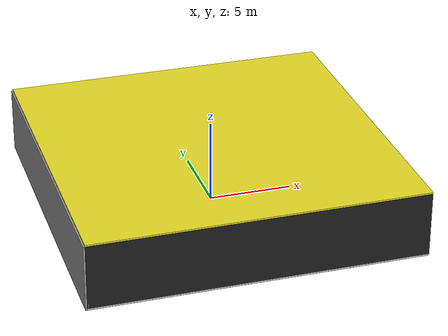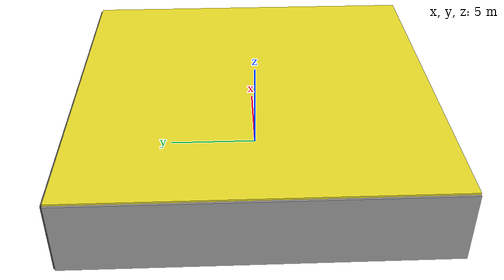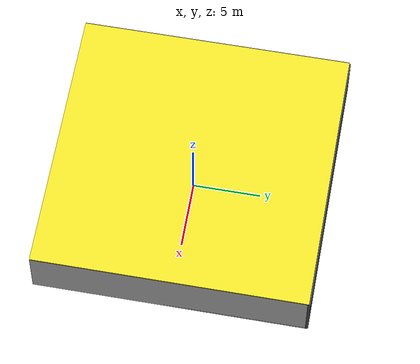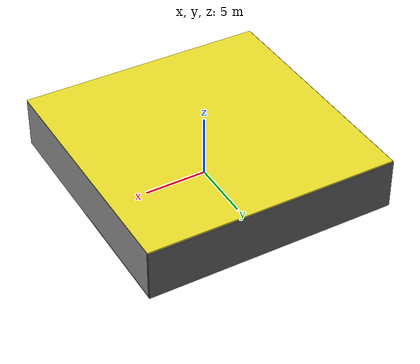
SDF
<sdf version="1.4">
 <world name="default">
  <physics type="ode">
   <max_step_size>0.001</max_step_size>
   <real_time_factor>1</real_time_factor>
   <real_time_update_rate>1000</real_time_update_rate>
   <gravity>0 0 -9.8</gravity>
  </physics>
  <scene><ambient>0.4 0.4 0.4 1</ambient><background>0.7 0.7 0.7 1</background><shadows>1</shadows></scene>
  <model name="Surrounding">
   <static>1</static>
   <link name="Ceiling">
    <collision name="Ceiling_Collision"><geometry><box><size>20 20 0.1</size></box></geometry></collision>
    <visual name="Ceiling_Visual">
     <geometry><box><size>20 20 0.1</size></box></geometry>
     <material>
      <script><uri>file://media/materials/scripts/gazebo.material</uri><name>Gazebo/Yellow</name></script>
     </material>
    </visual>
    <pose>0 0 4.05 0 0 0</pose>
   </link>
   <link name="Wall_South">
    <collision name="Wall_South_Collision">
     <geometry><box><size>20 0 4</size></box></geometry>
     <pose>0 0 2 0 -0 0</pose>
    </collision>
    <visual name="Wall_South_Visual">
     <pose>0 0 2 0 -0 0</pose>
     <geometry><box><size>20 0 4</size></box></geometry>
     <material>
      <script><uri>file://media/materials/scripts/gazebo.material</uri><name>Gazebo/FlatBlack</name></script>
     </material>
    </visual>
    <velocity_decay><linear>0</linear><angular>0</angular></velocity_decay>
    <pose>0 -10 0 0 -0 0</pose>
   </link>
   <link name="Wall_East">
    <collision name="Wall_21_Collision">
     <geometry><box><size>20 0 4</size></box></geometry>
     <pose>0 0 2 0 -0 0</pose>
    </collision>
    <visual name="Wall_21_Visual">
     <pose>0 0 2 0 -0 0</pose>
     <geometry><box><size>20 0 4</size></box></geometry>
     <material>
      <script><uri>file://media/materials/scripts/gazebo.material</uri><name>Gazebo/PioneerBody</name></script>
     </material>
    </visual>
    <velocity_decay><linear>0</linear><angular>0</angular></velocity_decay>
    <pose>10 0 0 0 -0 1.5708</pose>
   </link>
   <link name="Wall_North">
    <collision name="Wall_22_Collision">
     <geometry><box><size>20 0.2 4</size></box></geometry>
     <pose>0 0 2 0 -0 0</pose>
    </collision>
    <visual name="Wall_22_Visual">
     <pose>0 0 2 0 -0 0</pose>
     <geometry><box><size>20 0.2 4</size></box></geometry>
     <material>
      <script><uri>file://media/materials/scripts/gazebo.material</uri><name>Gazebo/Road</name></script>
     </material>
    </visual>
    <velocity_decay><linear>0</linear><angular>0</angular></velocity_decay>
    <pose>0 10 0 0 -0 0</pose>
   </link>
   <link name="Wall_West">
    <collision name="Wall_23_Collision">
     <geometry><box><size>20 0.2 4</size></box></geometry>
     <pose>0 0 2 0 -0 0</pose>
    </collision>
    <visual name="Wall_23_Visual">
     <pose>0 0 2 0 -0 0</pose>
     <geometry><box><size>20 0.2 4</size></box></geometry>
     <material>
      <script><uri>file://media/materials/scripts/gazebo.material</uri><name>Gazebo/Grey</name></script>
     </material>
    </visual>
    <velocity_decay><linear>0</linear><angular>0</angular></velocity_decay>
    <pose>-10 0 0 0 0 -1.5708</pose>
   </link>
   <link name="Ground_link">
    <collision name="collision">
     <pose>0 0 .05 0 -0 0</pose>
     <geometry><box><size>20 20 0.1</size></box></geometry>
    </collision>
    <visual name="visual">
     <pose>0 0 .05 0 -0 0</pose>
     <geometry><box><size>20 20 0.1</size></box></geometry>
     <material>
      <script><uri>file://media/materials/scripts/gazebo.material</uri><name>Gazebo/CeilingTiled</name></script>
     </material>
    </visual>
   </link>
   <static>1</static>
  </model>
  <spherical_coordinates>
   <surface_model>EARTH_WGS84</surface_model>
   <latitude_deg>0</latitude_deg>
   <longitude_deg>0</longitude_deg>
   <elevation>0</elevation>
   <heading_deg>0</heading_deg>
  </spherical_coordinates>
  <light name="lightball_0" type="diffuse">
   <diffuse>0.8 0.8 0.8 1</diffuse>
   <specular>0.2 0.2 0.2 1</specular>
   <attenuation>
    <range>100</range>
    <constant>0.7</constant>
    <linear>0.01</linear>
    <quadratic>0.001</quadratic>
   </attenuation>
   <direction>-0.5 0.1 -0.9</direction>
   <pose>4.96685758433 2.22049334745 2.43187682235 0 0 0</pose>
  </light>
  <light name="lightball_1" type="diffuse">
   <diffuse>0.8 0.8 0.8 1</diffuse>
   <specular>0.2 0.2 0.2 1</specular>
   <attenuation>
    <range>100</range>
    <constant>0.7</constant>
    <linear>0.01</linear>
    <quadratic>0.001</quadratic>
   </attenuation>
   <direction>-0.5 0.1 -0.9</direction>
   <pose>-5.4610782133 -2.73628196429 2.2216930667 0 0 0</pose>
  </light>
  <light name="lightball_2" type="diffuse">
   <diffuse>0.8 0.8 0.8 1</diffuse>
   <specular>0.2 0.2 0.2 1</specular>
   <attenuation>
    <range>100</range>
    <constant>0.7</constant>
    <linear>0.01</linear>
    <quadratic>0.001</quadratic>
   </attenuation>
   <direction>-0.5 0.1 -0.9</direction>
   <pose>0.673855981204 -7.27692702136 1.9053096087 0 0 0</pose>
  </light>
  <light name="lightball_3" type="diffuse">
   <diffuse>0.8 0.8 0.8 1</diffuse>
   <specular>0.2 0.2 0.2 1</specular>
   <attenuation>
    <range>100</range>
    <constant>0.7</constant>
    <linear>0.01</linear>
    <quadratic>0.001</quadratic>
   </attenuation>
   <direction>-0.5 0.1 -0.9</direction>
   <pose>-8.77176205352 1.76192762109 3.1206739124 0 0 0</pose>
  </light>
  <light name="lightball_4" type="diffuse">
   <diffuse>0.8 0.8 0.8 1</diffuse>
   <specular>0.2 0.2 0.2 1</specular>
   <attenuation>
    <range>100</range>
    <constant>0.7</constant>
    <linear>0.01</linear>
    <quadratic>0.001</quadratic>
   </attenuation>
   <direction>-0.5 0.1 -0.9</direction>
   <pose>-3.51469051957 2.10163996354 3.0942017024 0 0 0</pose>
  </light>
  <light name="lightball_5" type="diffuse">
   <diffuse>0.8 0.8 0.8 1</diffuse>
   <specular>0.2 0.2 0.2 1</specular>
   <attenuation>
    <range>100</range>
    <constant>0.7</constant>
    <linear>0.01</linear>
    <quadratic>0.001</quadratic>
   </attenuation>
   <direction>-0.5 0.1 -0.9</direction>
   <pose>-5.62223876875 -1.59625648595 2.15627225096 0 0 0</pose>
  </light>
  <light name="lightball_6" type="diffuse">
   <diffuse>0.8 0.8 0.8 1</diffuse>
   <specular>0.2 0.2 0.2 1</specular>
   <attenuation>
    <range>100</range>
    <constant>0.7</constant>
    <linear>0.01</linear>
    <quadratic>0.001</quadratic>
   </attenuation>
   <direction>-0.5 0.1 -0.9</direction>
   <pose>0.631493922696 0.982454043526 1.99092495375 0 0 0</pose>
  </light>
  <light name="lightball_7" type="diffuse">
   <diffuse>0.8 0.8 0.8 1</diffuse>
   <specular>0.2 0.2 0.2 1</specular>
   <attenuation>
    <range>100</range>
    <constant>0.7</constant>
    <linear>0.01</linear>
    <quadratic>0.001</quadratic>
   </attenuation>
   <direction>-0.5 0.1 -0.9</direction>
   <pose>-6.12816644741 2.01836517882 2.78824706002 0 0 0</pose>
  </light>
  <light name="lightball_8" type="diffuse">
   <diffuse>0.8 0.8 0.8 1</diffuse>
   <specular>0.2 0.2 0.2 1</specular>
   <attenuation>
    <range>100</range>
    <constant>0.7</constant>
    <linear>0.01</linear>
    <quadratic>0.001</quadratic>
   </attenuation>
   <direction>-0.5 0.1 -0.9</direction>
   <pose>8.26855959288 -1.83290787513 3.8516706564 0 0 0</pose>
  </light>
  <include><uri>model://cabinet</uri><pose>-6.84831281275 -5.24794669655 0 0 0 1.77447597487</pose></include>
  <include>
   <uri>model://robocup_3Dsim_goal</uri>
   <pose>-7.95117664537 6.844768803 0 0 0 0.792901590594</pose>
  </include>
  <include><uri>model://cabinet</uri><pose>-4.70494061496 -7.76085997024 0 0 0 1.98926625039</pose></include>
  <include><uri>model://cabinet</uri><pose>-4.16805031113 7.18574195388 0 0 0 2.49019864018</pose></include>
  <include><uri>model://table</uri><pose>7.84476837776 -8.06543553178 0 0 0 0.303605500999</pose></include>
 </world>
</sdf>

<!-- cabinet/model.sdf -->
<sdf version="1.5">
  <model name="cabinet">
    <static>true</static>
    <link name="cabinet_bottom_plate">
      <inertial>
        <pose>0 0 -1 0 0 0</pose>
        <inertia>
          <ixx>2.050000</ixx>
          <ixy>0</ixy>
          <ixz>0</ixz>
          <iyy>2.050000</iyy>
          <iyz>0</iyz>
          <izz>2.050000</izz>
        </inertia>
        <mass>25.000000</mass>
      </inertial>
      <collision name="cabinet_bottom_plate_geom">
        <pose>0 0 0.010000 0 0 0</pose>
        <geometry>
          <box>
            <size>0.450000 0.450000 0.020000</size>
          </box>
        </geometry>
      </collision>
      <visual name="cabinet_bottom_plate_geom_visual">
        <pose>0 0 0.010000 0 0 0</pose>
        <geometry>
          <box>
            <size>0.450000 0.450000 0.020000</size>
          </box>
        </geometry>
        <material>
          <script>
            <uri>model://media/materials/scripts/gazebo.material</uri>
            <name>Gazebo/Wood</name>
          </script>
        </material>
      </visual>
      <collision name="cabinet_bottom_plate_geom_cabinet_back_plate">
        <pose>0.235000 0 0.510000 0 0 0</pose>
        <geometry>
          <box>
            <size>0.020000 0.450000 1.020000</size>
          </box>
        </geometry>
      </collision>
      <visual name="cabinet_bottom_plate_geom_cabinet_back_plate_visual">
        <pose>0.235000 0 0.510000 0 0 0</pose>
        <geometry>
          <box>
            <size>0.020000 0.450000 1.020000</size>
          </box>
        </geometry>
        <material>
          <script>
            <uri>model://media/materials/scripts/gazebo.material</uri>
            <name>Gazebo/Wood</name>
          </script>
        </material>
      </visual>
      <collision name="cabinet_bottom_plate_geom_cabinet_left_plate">
        <pose>0 0.235000 0.510000 0 0 0</pose>
        <geometry>
          <box>
            <size>0.450000 0.020000 1.020000</size>
          </box>
        </geometry>
      </collision>
      <visual name="cabinet_bottom_plate_geom_cabinet_left_plate_visual">
        <pose>0 0.235000 0.510000 0 0 0</pose>
        <geometry>
          <box>
            <size>0.450000 0.020000 1.020000</size>
          </box>
        </geometry>
        <material>
          <script>
            <uri>model://media/materials/scripts/gazebo.material</uri>
            <name>Gazebo/Wood</name>
          </script>
        </material>
      </visual>
      <collision name="cabinet_bottom_plate_geom_cabinet_middle_plate">
        <pose>0 0 0.510000 0 0 0</pose>
        <geometry>
          <box>
            <size>0.450000 0.450000 0.020000</size>
          </box>
        </geometry>
      </collision>
      <visual name="cabinet_bottom_plate_geom_cabinet_middle_plate_visual">
        <pose>0 0 0.510000 0 0 0</pose>
        <geometry>
          <box>
            <size>0.450000 0.450000 0.020000</size>
          </box>
        </geometry>
        <material>
          <script>
            <uri>model://media/materials/scripts/gazebo.material</uri>
            <name>Gazebo/Wood</name>
          </script>
        </material>
      </visual>
      <collision name="cabinet_bottom_plate_geom_cabinet_right_plate">
        <pose>0 -0.235000 0.510000 0 0 0</pose>
        <geometry>
          <box>
            <size>0.450000 0.020000 1.020000</size>
          </box>
        </geometry>
      </collision>
      <visual name="cabinet_bottom_plate_geom_cabinet_right_plate_visual">
        <pose>0 -0.235000 0.510000 0 0 0</pose>
        <geometry>
          <box>
            <size>0.450000 0.020000 1.020000</size>
          </box>
        </geometry>
        <material>
          <script>
            <uri>model://media/materials/scripts/gazebo.material</uri>
            <name>Gazebo/Wood</name>
          </script>
        </material>
      </visual>
      <collision name="cabinet_bottom_plate_geom_cabinet_top_plate">
        <pose>0 0 1.010000 0 0 0</pose>
        <geometry>
          <box>
            <size>0.450000 0.450000 0.020000</size>
          </box>
        </geometry>
      </collision>
      <visual name="cabinet_bottom_plate_geom_cabinet_top_plate_visual">
        <pose>0 0 1.010000 0 0 0</pose>
        <geometry>
          <box>
            <size>0.450000 0.450000 0.020000</size>
          </box>
        </geometry>
        <material>
          <script>
            <uri>model://media/materials/scripts/gazebo.material</uri>
            <name>Gazebo/Wood</name>
          </script>
        </material>
      </visual>
    </link>
  </model>
</sdf>

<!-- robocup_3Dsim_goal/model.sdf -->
<sdf version="1.5">
  <model name="robocup_3d_goal">
    <static>true</static>
    <link name="left_post">
      <pose>0 1.05 0.45 0 0 0</pose>
      <collision name="collision">
        <geometry>
          <cylinder>
            <radius>0.05</radius>
            <length>0.9</length>
          </cylinder>
        </geometry>
      </collision>
      <visual name="visual">
        <geometry>
          <cylinder>
            <radius>0.05</radius>
            <length>0.9</length>
          </cylinder>
        </geometry>
        <material>
          <script>
            <uri>file://media/materials/scripts/gazebo.material</uri>
            <name>Gazebo/ZincYellow</name>
          </script>
        </material>
      </visual>
    </link>
    <link name="left_support_horiz_lower">
      <pose>0.30 1.05 0.01 0 0 0</pose>
      <collision name="collision">
        <geometry>
          <box>
            <size>0.50 0.02 0.02</size>
          </box>
        </geometry>
      </collision>
      <visual name="visual">
        <geometry>
          <box>
            <size>0.50 0.02 0.02</size>
          </box>
        </geometry>
        <material>
          <script>
            <uri>file://media/materials/scripts/gazebo.material</uri>
            <name>Gazebo/White</name>
          </script>
        </material>
      </visual>
    </link>
    <link name="left_support_horiz_upper">
      <pose>0.30 1.05 0.79 0 0 0</pose>
      <collision name="collision">
        <geometry>
          <box>
            <size>0.50 0.02 0.02</size>
          </box>
        </geometry>
      </collision>
      <visual name="visual">
        <geometry>
          <box>
            <size>0.50 0.02 0.02</size>
          </box>
        </geometry>
        <material>
          <script>
            <uri>file://media/materials/scripts/gazebo.material</uri>
            <name>Gazebo/White</name>
          </script>
        </material>
      </visual>
    </link>
    <link name="left_support_vertical">
      <pose>0.56 1.05 0.4 0 1.5708 0</pose>
      <collision name="collision">
        <geometry>
          <box>
            <size>0.80 0.02 0.02</size>
          </box>
        </geometry>
      </collision>
      <visual name="visual">
        <geometry>
          <box>
            <size>0.80 0.02 0.02</size>
          </box>
        </geometry>
        <material>
          <script>
            <uri>file://media/materials/scripts/gazebo.material</uri>
            <name>Gazebo/White</name>
          </script>
        </material>
      </visual>
    </link>
    <link name="right_support_horiz_lower">
      <pose>0.30 -1.05 0.01 0 0 0</pose>
      <collision name="collision">
        <geometry>
          <box>
            <size>0.50 0.02 0.02</size>
          </box>
        </geometry>
      </collision>
      <visual name="visual">
        <geometry>
          <box>
            <size>0.50 0.02 0.02</size>
          </box>
        </geometry>
        <material>
          <script>
            <uri>file://media/materials/scripts/gazebo.material</uri>
            <name>Gazebo/White</name>
          </script>
        </material>
      </visual>
    </link>
    <link name="right_support_horiz_upper">
      <pose>0.30 -1.05 0.79 0 0 0</pose>
      <collision name="collision">
        <geometry>
          <box>
            <size>0.50 0.02 0.02</size>
          </box>
        </geometry>
      </collision>
      <visual name="visual">
        <geometry>
          <box>
            <size>0.50 0.02 0.02</size>
          </box>
        </geometry>
        <material>
          <script>
            <uri>file://media/materials/scripts/gazebo.material</uri>
            <name>Gazebo/White</name>
          </script>
        </material>
      </visual>
    </link>
    <link name="right_support_vertical">
      <pose>0.56 -1.05 0.4 0 1.5708 0</pose>
      <collision name="collision">
        <geometry>
          <box>
            <size>0.80 0.02 0.02</size>
          </box>
        </geometry>
      </collision>
      <visual name="visual">
        <geometry>
          <box>
            <size>0.80 0.02 0.02</size>
          </box>
        </geometry>
        <material>
          <script>
            <uri>file://media/materials/scripts/gazebo.material</uri>
            <name>Gazebo/White</name>
          </script>
        </material>
      </visual>
    </link>
    <link name="center_support_horiz_lower">
      <pose>0.56 0 0.01 0 1.5708 0</pose>
      <collision name="collision">
        <geometry>
          <box>
            <size>0.02 2.08 0.02</size>
          </box>
        </geometry>
      </collision>
      <visual name="visual">
        <geometry>
          <box>
            <size>0.02 2.08 0.02</size>
          </box>
        </geometry>
        <material>
          <script>
            <uri>file://media/materials/scripts/gazebo.material</uri>
            <name>Gazebo/White</name>
          </script>
        </material>
      </visual>
    </link>
    <link name="center_support_horiz_upper">
      <pose>0.56 0 0.79 0 1.5708 0</pose>
      <collision name="collision">
        <geometry>
          <box>
            <size>0.02 2.08 0.02</size>
          </box>
        </geometry>
      </collision>
      <visual name="visual">
        <geometry>
          <box>
            <size>0.02 2.08 0.02</size>
          </box>
        </geometry>
        <material>
          <script>
            <uri>file://media/materials/scripts/gazebo.material</uri>
            <name>Gazebo/White</name>
          </script>
        </material>
      </visual>
    </link>
    <link name="right_post">
      <pose>0 -1.05 0.45 0 0 0</pose>
      <collision name="collision">
        <geometry>
          <cylinder>
            <radius>0.05</radius>
            <length>0.9</length>
          </cylinder>
        </geometry>
      </collision>
      <visual name="visual">
        <geometry>
          <cylinder>
            <radius>0.05</radius>
            <length>0.9</length>
          </cylinder>
        </geometry>
        <material>
          <script>
            <uri>file://media/materials/scripts/gazebo.material</uri>
            <name>Gazebo/ZincYellow</name>
          </script>
        </material>
      </visual>
    </link>
    <link name="crossbar">
      <pose>0 0 0.85 1.57 1.57 0</pose>
      <collision name="collision">
        <geometry>
          <cylinder>
            <radius>0.05</radius>
            <length>2.0</length>
          </cylinder>
        </geometry>
      </collision>
      <visual name="visual">
        <geometry>
          <cylinder>
            <radius>0.05</radius>
            <length>2.0</length>
          </cylinder>
        </geometry>
        <material>
          <script>
            <uri>file://media/materials/scripts/gazebo.material</uri>
            <name>Gazebo/ZincYellow</name>
          </script>
        </material>
      </visual>
    </link>
    <link name="center_net">
      <pose>0.56 0 0.40 0 0 0</pose>
      <collision name="collision">
        <geometry>
          <box>
            <size>0.01 2.1 0.80</size>
          </box>
        </geometry>
      </collision>
      <visual name="visual">
        <geometry>
          <box>
            <size>0.01 2.1 0.80</size>
          </box>
        </geometry>
        <material>
          <script>
            <uri>model://../model_source/models/robocup09_spl_field/materials/scripts/</uri>
            <uri>model://../model_source/models/robocup09_spl_field/materials/textures/</uri>
            <name>RoboCup/Net</name>
          </script>
        </material>
      </visual>
    </link>
    <link name="left_net">
      <pose>0.30 1.05 0.40 0 0 0</pose>
      <collision name="collision">
        <geometry>
          <box>
            <size>0.50 0.01 0.76</size>
          </box>
        </geometry>
      </collision>
      <visual name="visual">
        <geometry>
          <box>
            <size>0.50 0.01 0.76</size>
          </box>
        </geometry>
        <material>
          <script>
            <uri>model://../model_source/models/robocup09_spl_field/materials/scripts/</uri>
            <uri>model://../model_source/models/robocup09_spl_field/materials/textures/</uri>
            <name>RoboCup/Net</name>
          </script>
        </material>
      </visual>
    </link>
    <link name="right_net">
      <pose>0.30 -1.05 0.40 0 0 0</pose>
      <collision name="collision">
        <geometry>
          <box>
            <size>0.50 0.01 0.76</size>
          </box>
        </geometry>
      </collision>
      <visual name="visual">
        <geometry>
          <box>
            <size>0.50 0.01 0.76</size>
          </box>
        </geometry>
        <material>
          <script>
            <uri>model://../model_source/models/robocup09_spl_field/materials/scripts/</uri>
            <uri>model://../model_source/models/robocup09_spl_field/materials/textures/</uri>
            <name>RoboCup/Net</name>
          </script>
        </material>
      </visual>
    </link>
  </model>
</sdf>

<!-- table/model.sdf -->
<sdf version="1.5">
  <model name="table">
    <static>true</static>
    <link name="link">
      <collision name="surface">
        <pose>0 0 1.0 0 0 0</pose>
        <geometry>
          <box>
            <size>1.5 0.8 0.03</size>
          </box>
        </geometry>
        <surface>
          <friction>
            <ode>
              <mu>0.6</mu>
              <mu2>0.6</mu2>
            </ode>
          </friction>
        </surface>
      </collision>
      <visual name="visual1">
        <pose>0 0 1.0 0 0 0</pose>
        <geometry>
          <box>
            <size>1.5 0.8 0.03</size>
          </box>
        </geometry>
        <material>
          <script>
            <uri>model://media/materials/scripts/gazebo.material</uri>
            <name>Gazebo/Wood</name>
          </script>
        </material>
      </visual>
      <collision name="front_left_leg">
        <pose>0.68 0.38 0.5 0 0 0</pose>
        <geometry>
          <cylinder>
            <radius>0.02</radius>
            <length>1.0</length>
          </cylinder>
        </geometry>
      </collision>
      <visual name="front_left_leg">
        <pose>0.68 0.38 0.5 0 0 0</pose>
        <geometry>
          <cylinder>
            <radius>0.02</radius>
            <length>1.0</length>
          </cylinder>
        </geometry>
        <material>
          <script>
            <uri>model://media/materials/scripts/gazebo.material</uri>
            <name>Gazebo/Grey</name>
          </script>
        </material>
      </visual>
      <collision name="front_right_leg">
        <pose>0.68 -0.38 0.5 0 0 0</pose>
        <geometry>
          <cylinder>
            <radius>0.02</radius>
            <length>1.0</length>
          </cylinder>
        </geometry>
      </collision>
      <visual name="front_right_leg">
        <pose>0.68 -0.38 0.5 0 0 0</pose>
        <geometry>
          <cylinder>
            <radius>0.02</radius>
            <length>1.0</length>
          </cylinder>
        </geometry>
        <material>
          <script>
            <uri>model://media/materials/scripts/gazebo.material</uri>
            <name>Gazebo/Grey</name>
          </script>
        </material>
      </visual>
      <collision name="back_right_leg">
        <pose>-0.68 -0.38 0.5 0 0 0</pose>
        <geometry>
          <cylinder>
            <radius>0.02</radius>
            <length>1.0</length>
          </cylinder>
        </geometry>
      </collision>
      <visual name="back_right_leg">
        <pose>-0.68 -0.38 0.5 0 0 0</pose>
        <geometry>
          <cylinder>
            <radius>0.02</radius>
            <length>1.0</length>
          </cylinder>
        </geometry>
        <material>
          <script>
            <uri>model://media/materials/scripts/gazebo.material</uri>
            <name>Gazebo/Grey</name>
          </script>
        </material>
      </visual>
      <collision name="back_left_leg">
        <pose>-0.68 0.38 0.5 0 0 0</pose>
        <geometry>
          <cylinder>
            <radius>0.02</radius>
            <length>1.0</length>
          </cylinder>
        </geometry>
      </collision>
      <visual name="back_left_leg">
        <pose>-0.68 0.38 0.5 0 0 0</pose>
        <geometry>
          <cylinder>
            <radius>0.02</radius>
            <length>1.0</length>
          </cylinder>
        </geometry>
        <material>
          <script>
            <uri>model://media/materials/scripts/gazebo.material</uri>
            <name>Gazebo/Grey</name>
          </script>
        </material>
      </visual>
    </link>
  </model>
</sdf>
